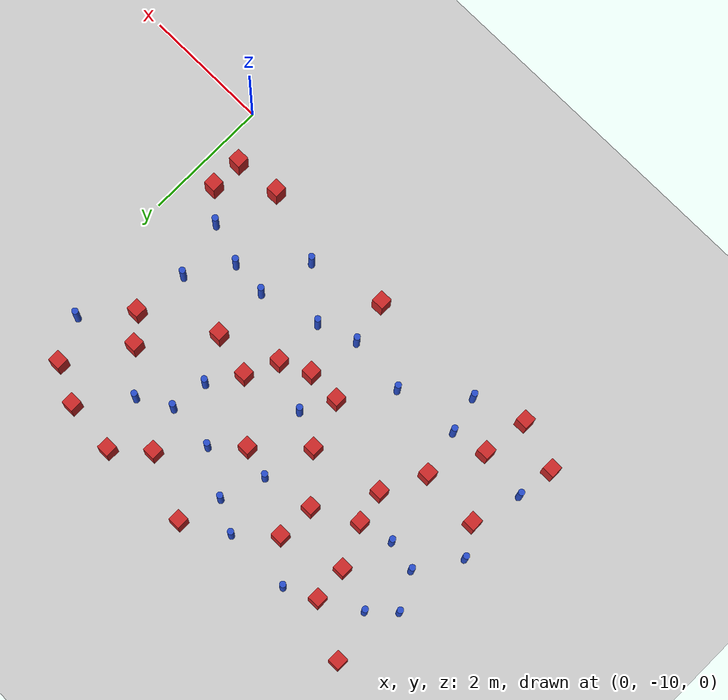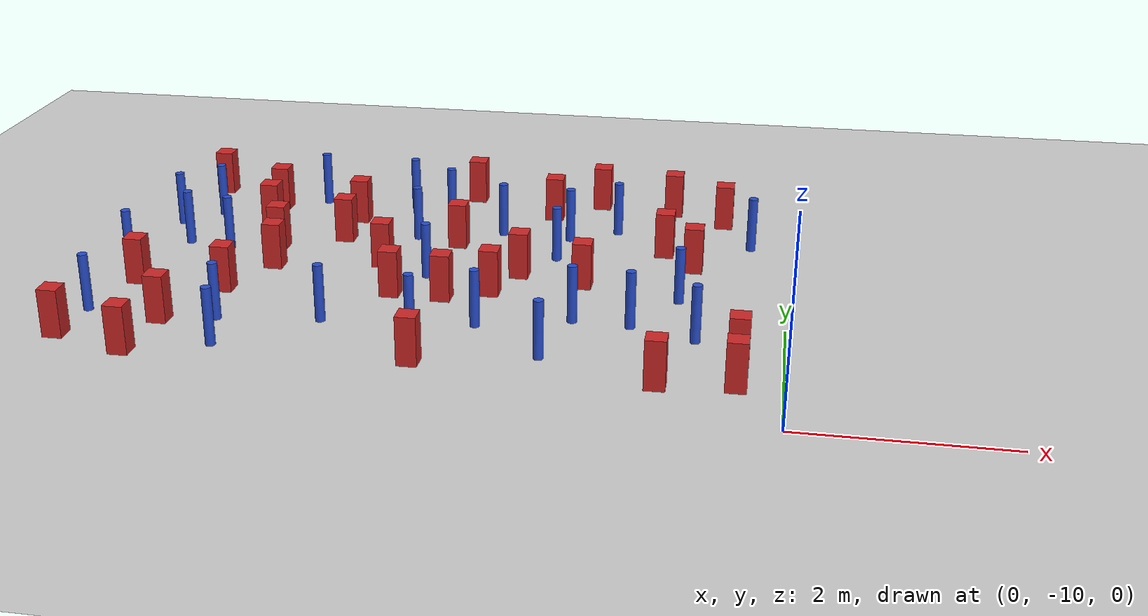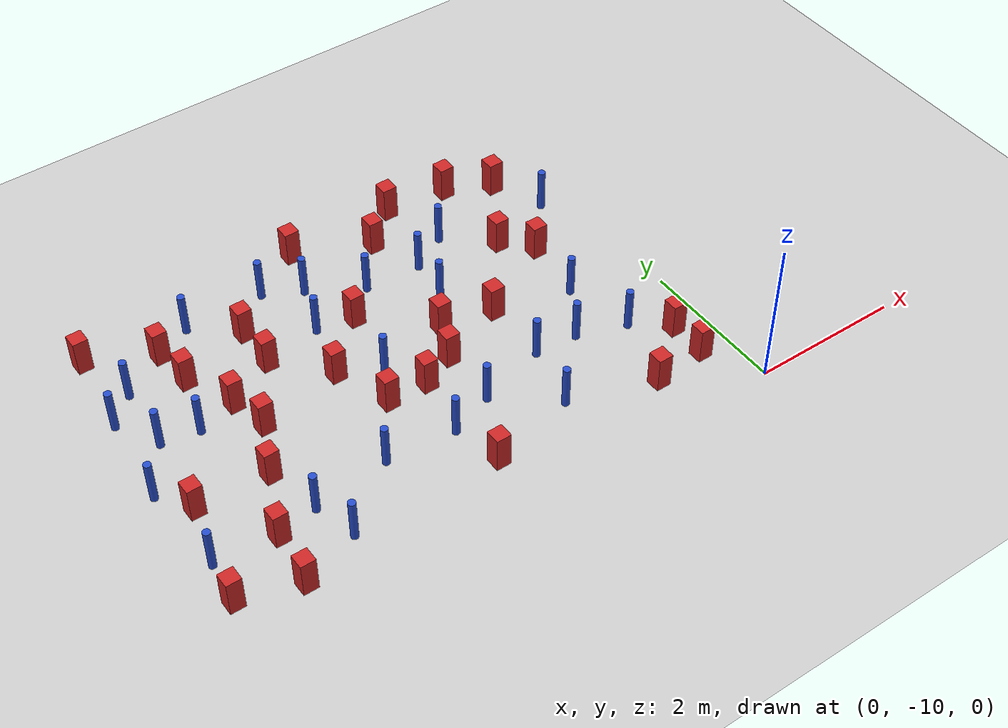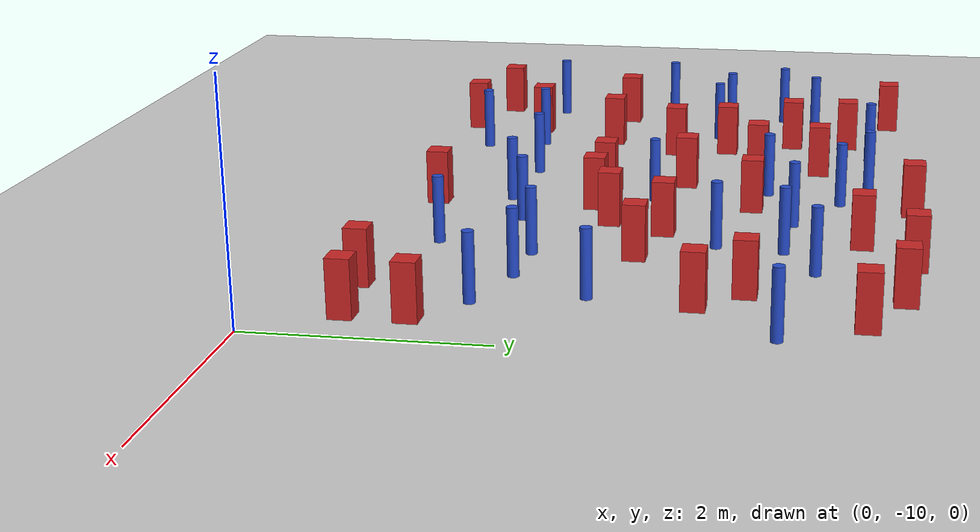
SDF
<sdf version="1.6">
 <world name="default">
  <model name="ground_plane">
   <static>1</static>
   <link name="link">
    <collision name="collision">
     <geometry><plane><normal>0 0 1</normal><size>100 100</size></plane></geometry>
     <surface><friction><ode><mu>100</mu><mu2>50</mu2></ode></friction></surface>
    </collision>
    <visual name="visual">
     <cast_shadows>0</cast_shadows>
     <geometry><plane><normal>0 0 1</normal><size>100 100</size></plane></geometry>
     <material>
      <ambient>1.0 1.0 1.0 1.0</ambient>
      <diffuse>0.8 0.8 0.8 1.0</diffuse>
      <specular>0.01 0.01 0.01 1.000000</specular>
     </material>
    </visual>
   </link>
  </model>
  <model name="square_post_obstacle13">
   <static>true</static>
   <pose>-1.15080311443 -9.35945894737 -6.11067671241e-07 -5.50515727128e-06 -8.79689657224e-07 2.37013304536e-05</pose>
   <link name="link">
    <pose>0 0 0.25 0 -0 0</pose>
    <inertial>
     <mass>100</mass>
     <inertia>
      <ixx>0.166667</ixx>
      <ixy>0</ixy>
      <ixz>0</ixz>
      <iyy>0.166667</iyy>
      <iyz>0</iyz>
      <izz>0.166667</izz>
     </inertia>
    </inertial>
    <collision name="collision"><geometry><box><size>.2 .2 .5</size></box></geometry></collision>
    <visual name="visual">
     <geometry><box><size>.2 .2 .5</size></box></geometry>
     <material>
      <script><name>Gazebo/Red</name><uri>file://media/materials/scripts/gazebo.material</uri></script>
     </material>
    </visual>
   </link>
  </model>
  <model name="square_post_obstacle15">
   <static>true</static>
   <pose>-4.85752129993 -6.35627862861 -6.11067671241e-07 -5.50515727128e-06 -8.79689657224e-07 2.37013304536e-05</pose>
   <link name="link">
    <pose>0 0 0.25 0 -0 0</pose>
    <inertial>
     <mass>100</mass>
     <inertia>
      <ixx>0.166667</ixx>
      <ixy>0</ixy>
      <ixz>0</ixz>
      <iyy>0.166667</iyy>
      <iyz>0</iyz>
      <izz>0.166667</izz>
     </inertia>
    </inertial>
    <collision name="collision"><geometry><box><size>.2 .2 .5</size></box></geometry></collision>
    <visual name="visual">
     <geometry><box><size>.2 .2 .5</size></box></geometry>
     <material>
      <script><name>Gazebo/Red</name><uri>file://media/materials/scripts/gazebo.material</uri></script>
     </material>
    </visual>
   </link>
  </model>
  <model name="pole_obstacle12">
   <static>true</static>
   <pose>-6.84113890577 -6.18718154438 -9.47619616065e-06 5.49618799737e-07 2.36310414037e-07 -1.55090534814e-07</pose>
   <link name="link">
    <pose>0 0 0.3 0 -0 0</pose>
    <inertial>
     <mass>1</mass>
     <inertia><ixx>0.145833</ixx><ixy>0</ixy><ixz>0</ixz><iyy>0.145833</iyy><iyz>0</iyz><izz>0.125</izz></inertia>
    </inertial>
    <collision name="collision">
     <geometry><cylinder><radius>0.05</radius><length>.6</length></cylinder></geometry>
    </collision>
    <visual name="visual">
     <geometry><cylinder><radius>0.05</radius><length>.6</length></cylinder></geometry>
     <material>
      <script><name>Gazebo/Blue</name><uri>file://media/materials/scripts/gazebo.material</uri></script>
     </material>
    </visual>
   </link>
  </model>
  <model name="pole_obstacle13">
   <static>true</static>
   <pose>-6.47406908762 -5.83882326875 -9.47619616065e-06 5.49618799737e-07 2.36310414037e-07 -1.55090534814e-07</pose>
   <link name="link">
    <pose>0 0 0.3 0 -0 0</pose>
    <inertial>
     <mass>1</mass>
     <inertia><ixx>0.145833</ixx><ixy>0</ixy><ixz>0</ixz><iyy>0.145833</iyy><iyz>0</iyz><izz>0.125</izz></inertia>
    </inertial>
    <collision name="collision">
     <geometry><cylinder><radius>0.05</radius><length>.6</length></cylinder></geometry>
    </collision>
    <visual name="visual">
     <geometry><cylinder><radius>0.05</radius><length>.6</length></cylinder></geometry>
     <material>
      <script><name>Gazebo/Blue</name><uri>file://media/materials/scripts/gazebo.material</uri></script>
     </material>
    </visual>
   </link>
  </model>
  <model name="square_post_obstacle26">
   <static>true</static>
   <pose>-2.65198207244 -5.31864021981 -6.11067671241e-07 -5.50515727128e-06 -8.79689657224e-07 2.37013304536e-05</pose>
   <link name="link">
    <pose>0 0 0.25 0 -0 0</pose>
    <inertial>
     <mass>100</mass>
     <inertia>
      <ixx>0.166667</ixx>
      <ixy>0</ixy>
      <ixz>0</ixz>
      <iyy>0.166667</iyy>
      <iyz>0</iyz>
      <izz>0.166667</izz>
     </inertia>
    </inertial>
    <collision name="collision"><geometry><box><size>.2 .2 .5</size></box></geometry></collision>
    <visual name="visual">
     <geometry><box><size>.2 .2 .5</size></box></geometry>
     <material>
      <script><name>Gazebo/Red</name><uri>file://media/materials/scripts/gazebo.material</uri></script>
     </material>
    </visual>
   </link>
  </model>
  <model name="square_post_obstacle28">
   <static>true</static>
   <pose>-2.7761158407 -7.06162654108 -6.11067671241e-07 -5.50515727128e-06 -8.79689657224e-07 2.37013304536e-05</pose>
   <link name="link">
    <pose>0 0 0.25 0 -0 0</pose>
    <inertial>
     <mass>100</mass>
     <inertia>
      <ixx>0.166667</ixx>
      <ixy>0</ixy>
      <ixz>0</ixz>
      <iyy>0.166667</iyy>
      <iyz>0</iyz>
      <izz>0.166667</izz>
     </inertia>
    </inertial>
    <collision name="collision"><geometry><box><size>.2 .2 .5</size></box></geometry></collision>
    <visual name="visual">
     <geometry><box><size>.2 .2 .5</size></box></geometry>
     <material>
      <script><name>Gazebo/Red</name><uri>file://media/materials/scripts/gazebo.material</uri></script>
     </material>
    </visual>
   </link>
  </model>
  <model name="square_post_obstacle30">
   <static>true</static>
   <pose>-6.70299191993 -5.05854569441 -6.11067671241e-07 -5.50515727128e-06 -8.79689657224e-07 2.37013304536e-05</pose>
   <link name="link">
    <pose>0 0 0.25 0 -0 0</pose>
    <inertial>
     <mass>100</mass>
     <inertia>
      <ixx>0.166667</ixx>
      <ixy>0</ixy>
      <ixz>0</ixz>
      <iyy>0.166667</iyy>
      <iyz>0</iyz>
      <izz>0.166667</izz>
     </inertia>
    </inertial>
    <collision name="collision"><geometry><box><size>.2 .2 .5</size></box></geometry></collision>
    <visual name="visual">
     <geometry><box><size>.2 .2 .5</size></box></geometry>
     <material>
      <script><name>Gazebo/Red</name><uri>file://media/materials/scripts/gazebo.material</uri></script>
     </material>
    </visual>
   </link>
  </model>
  <model name="pole_obstacle20">
   <static>true</static>
   <pose>-1.07107192805 -7.48233160048 -9.47619616065e-06 5.49618799737e-07 2.36310414061e-07 -1.550905348e-07</pose>
   <link name="link">
    <pose>0 0 0.3 0 -0 0</pose>
    <inertial>
     <mass>1</mass>
     <inertia><ixx>0.145833</ixx><ixy>0</ixy><ixz>0</ixz><iyy>0.145833</iyy><iyz>0</iyz><izz>0.125</izz></inertia>
    </inertial>
    <collision name="collision">
     <geometry><cylinder><radius>0.05</radius><length>.6</length></cylinder></geometry>
    </collision>
    <visual name="visual">
     <geometry><cylinder><radius>0.05</radius><length>.6</length></cylinder></geometry>
     <material>
      <script><name>Gazebo/Blue</name><uri>file://media/materials/scripts/gazebo.material</uri></script>
     </material>
    </visual>
   </link>
  </model>
  <model name="square_post_obstacle39">
   <static>true</static>
   <pose>-1.31602719654 -6.23892827977 -6.11067671241e-07 -5.50515727128e-06 -8.79689657224e-07 2.37013304536e-05</pose>
   <link name="link">
    <pose>0 0 0.25 0 -0 0</pose>
    <inertial>
     <mass>100</mass>
     <inertia>
      <ixx>0.166667</ixx>
      <ixy>0</ixy>
      <ixz>0</ixz>
      <iyy>0.166667</iyy>
      <iyz>0</iyz>
      <izz>0.166667</izz>
     </inertia>
    </inertial>
    <collision name="collision"><geometry><box><size>.2 .2 .5</size></box></geometry></collision>
    <visual name="visual">
     <geometry><box><size>.2 .2 .5</size></box></geometry>
     <material>
      <script><name>Gazebo/Red</name><uri>file://media/materials/scripts/gazebo.material</uri></script>
     </material>
    </visual>
   </link>
  </model>
  <model name="square_post_obstacle40">
   <static>true</static>
   <pose>-0.981823867584 -6.62053631097 -6.11067671241e-07 -5.50515727128e-06 -8.79689657224e-07 2.37013304536e-05</pose>
   <link name="link">
    <pose>0 0 0.25 0 -0 0</pose>
    <inertial>
     <mass>100</mass>
     <inertia>
      <ixx>0.166667</ixx>
      <ixy>0</ixy>
      <ixz>0</ixz>
      <iyy>0.166667</iyy>
      <iyz>0</iyz>
      <izz>0.166667</izz>
     </inertia>
    </inertial>
    <collision name="collision"><geometry><box><size>.2 .2 .5</size></box></geometry></collision>
    <visual name="visual">
     <geometry><box><size>.2 .2 .5</size></box></geometry>
     <material>
      <script><name>Gazebo/Red</name><uri>file://media/materials/scripts/gazebo.material</uri></script>
     </material>
    </visual>
   </link>
  </model>
  <model name="square_post_obstacle46">
   <static>true</static>
   <pose>-2.08933528591 -7.22850360897 -6.11067671241e-07 -5.50515727128e-06 -8.79689657224e-07 2.37013304536e-05</pose>
   <link name="link">
    <pose>0 0 0.25 0 -0 0</pose>
    <inertial>
     <mass>100</mass>
     <inertia>
      <ixx>0.166667</ixx>
      <ixy>0</ixy>
      <ixz>0</ixz>
      <iyy>0.166667</iyy>
      <iyz>0</iyz>
      <izz>0.166667</izz>
     </inertia>
    </inertial>
    <collision name="collision"><geometry><box><size>.2 .2 .5</size></box></geometry></collision>
    <visual name="visual">
     <geometry><box><size>.2 .2 .5</size></box></geometry>
     <material>
      <script><name>Gazebo/Red</name><uri>file://media/materials/scripts/gazebo.material</uri></script>
     </material>
    </visual>
   </link>
  </model>
  <model name="square_post_obstacle48">
   <static>true</static>
   <pose>-4.2741128668 -7.00380324976 -6.11067671241e-07 -5.50515727128e-06 -8.79689657224e-07 2.37013304536e-05</pose>
   <link name="link">
    <pose>0 0 0.25 0 -0 0</pose>
    <inertial>
     <mass>100</mass>
     <inertia>
      <ixx>0.166667</ixx>
      <ixy>0</ixy>
      <ixz>0</ixz>
      <iyy>0.166667</iyy>
      <iyz>0</iyz>
      <izz>0.166667</izz>
     </inertia>
    </inertial>
    <collision name="collision"><geometry><box><size>.2 .2 .5</size></box></geometry></collision>
    <visual name="visual">
     <geometry><box><size>.2 .2 .5</size></box></geometry>
     <material>
      <script><name>Gazebo/Red</name><uri>file://media/materials/scripts/gazebo.material</uri></script>
     </material>
    </visual>
   </link>
  </model>
  <model name="square_post_obstacle50">
   <static>true</static>
   <pose>-6.6819377947 -7.85800554298 -6.11067671241e-07 -5.50515727128e-06 -8.79689657224e-07 2.37013304536e-05</pose>
   <link name="link">
    <pose>0 0 0.25 0 -0 0</pose>
    <inertial>
     <mass>100</mass>
     <inertia>
      <ixx>0.166667</ixx>
      <ixy>0</ixy>
      <ixz>0</ixz>
      <iyy>0.166667</iyy>
      <iyz>0</iyz>
      <izz>0.166667</izz>
     </inertia>
    </inertial>
    <collision name="collision"><geometry><box><size>.2 .2 .5</size></box></geometry></collision>
    <visual name="visual">
     <geometry><box><size>.2 .2 .5</size></box></geometry>
     <material>
      <script><name>Gazebo/Red</name><uri>file://media/materials/scripts/gazebo.material</uri></script>
     </material>
    </visual>
   </link>
  </model>
  <model name="pole_obstacle57">
   <static>true</static>
   <pose>-0.851152132205 -8.38104891946 -9.47619616065e-06 5.49618799737e-07 2.36310414038e-07 -1.55090534813e-07</pose>
   <link name="link">
    <pose>0 0 0.3 0 -0 0</pose>
    <inertial>
     <mass>1</mass>
     <inertia><ixx>0.145833</ixx><ixy>0</ixy><ixz>0</ixz><iyy>0.145833</iyy><iyz>0</iyz><izz>0.125</izz></inertia>
    </inertial>
    <collision name="collision">
     <geometry><cylinder><radius>0.05</radius><length>.6</length></cylinder></geometry>
    </collision>
    <visual name="visual">
     <geometry><cylinder><radius>0.05</radius><length>.6</length></cylinder></geometry>
     <material>
      <script><name>Gazebo/Blue</name><uri>file://media/materials/scripts/gazebo.material</uri></script>
     </material>
    </visual>
   </link>
  </model>
  <model name="pole_obstacle60">
   <static>true</static>
   <pose>-2.9989048025 -8.37316867764 -9.4761961606e-06 5.49618799729e-07 2.36310414e-07 -1.55090534824e-07</pose>
   <link name="link">
    <pose>0 0 0.3 0 -0 0</pose>
    <inertial>
     <mass>1</mass>
     <inertia><ixx>0.145833</ixx><ixy>0</ixy><ixz>0</ixz><iyy>0.145833</iyy><iyz>0</iyz><izz>0.125</izz></inertia>
    </inertial>
    <collision name="collision">
     <geometry><cylinder><radius>0.05</radius><length>.6</length></cylinder></geometry>
    </collision>
    <visual name="visual">
     <geometry><cylinder><radius>0.05</radius><length>.6</length></cylinder></geometry>
     <material>
      <script><name>Gazebo/Blue</name><uri>file://media/materials/scripts/gazebo.material</uri></script>
     </material>
    </visual>
   </link>
  </model>
  <model name="pole_obstacle64">
   <static>true</static>
   <pose>-1.88089551525 -5.69829504972 -9.47619616065e-06 5.49618799737e-07 2.36310414061e-07 -1.550905348e-07</pose>
   <link name="link">
    <pose>0 0 0.3 0 -0 0</pose>
    <inertial>
     <mass>1</mass>
     <inertia><ixx>0.145833</ixx><ixy>0</ixy><ixz>0</ixz><iyy>0.145833</iyy><iyz>0</iyz><izz>0.125</izz></inertia>
    </inertial>
    <collision name="collision">
     <geometry><cylinder><radius>0.05</radius><length>.6</length></cylinder></geometry>
    </collision>
    <visual name="visual">
     <geometry><cylinder><radius>0.05</radius><length>.6</length></cylinder></geometry>
     <material>
      <script><name>Gazebo/Blue</name><uri>file://media/materials/scripts/gazebo.material</uri></script>
     </material>
    </visual>
   </link>
  </model>
  <model name="pole_obstacle77">
   <static>true</static>
   <pose>-5.55270071879 -8.6290468196 -9.47619616065e-06 5.49618799737e-07 2.36310414065e-07 -1.55090534796e-07</pose>
   <link name="link">
    <pose>0 0 0.3 0 -0 0</pose>
    <inertial>
     <mass>1</mass>
     <inertia><ixx>0.145833</ixx><ixy>0</ixy><ixz>0</ixz><iyy>0.145833</iyy><iyz>0</iyz><izz>0.125</izz></inertia>
    </inertial>
    <collision name="collision">
     <geometry><cylinder><radius>0.05</radius><length>.6</length></cylinder></geometry>
    </collision>
    <visual name="visual">
     <geometry><cylinder><radius>0.05</radius><length>.6</length></cylinder></geometry>
     <material>
      <script><name>Gazebo/Blue</name><uri>file://media/materials/scripts/gazebo.material</uri></script>
     </material>
    </visual>
   </link>
  </model>
  <model name="pole_obstacle87">
   <static>true</static>
   <pose>-6.89351539814 -8.63668752227 -9.47619616065e-06 5.49618799737e-07 2.36310414065e-07 -1.55090534796e-07</pose>
   <link name="link">
    <pose>0 0 0.3 0 -0 0</pose>
    <inertial>
     <mass>1</mass>
     <inertia><ixx>0.145833</ixx><ixy>0</ixy><ixz>0</ixz><iyy>0.145833</iyy><iyz>0</iyz><izz>0.125</izz></inertia>
    </inertial>
    <collision name="collision">
     <geometry><cylinder><radius>0.05</radius><length>.6</length></cylinder></geometry>
    </collision>
    <visual name="visual">
     <geometry><cylinder><radius>0.05</radius><length>.6</length></cylinder></geometry>
     <material>
      <script><name>Gazebo/Blue</name><uri>file://media/materials/scripts/gazebo.material</uri></script>
     </material>
    </visual>
   </link>
  </model>
  <model name="square_post_obstacle81">
   <static>true</static>
   <pose>-2.14886420166 -4.87381800318 -6.11067671241e-07 -5.50515727128e-06 -8.79689657224e-07 2.37013304536e-05</pose>
   <link name="link">
    <pose>0 0 0.25 0 -0 0</pose>
    <inertial>
     <mass>100</mass>
     <inertia>
      <ixx>0.166667</ixx>
      <ixy>0</ixy>
      <ixz>0</ixz>
      <iyy>0.166667</iyy>
      <iyz>0</iyz>
      <izz>0.166667</izz>
     </inertia>
    </inertial>
    <collision name="collision"><geometry><box><size>.2 .2 .5</size></box></geometry></collision>
    <visual name="visual">
     <geometry><box><size>.2 .2 .5</size></box></geometry>
     <material>
      <script><name>Gazebo/Red</name><uri>file://media/materials/scripts/gazebo.material</uri></script>
     </material>
    </visual>
   </link>
  </model>
  <model name="pole_obstacle101">
   <static>true</static>
   <pose>-3.1489185395 -5.93360889601 -9.47619616065e-06 5.49618799738e-07 2.3631041406e-07 -1.55090534801e-07</pose>
   <link name="link">
    <pose>0 0 0.3 0 -0 0</pose>
    <inertial>
     <mass>1</mass>
     <inertia><ixx>0.145833</ixx><ixy>0</ixy><ixz>0</ixz><iyy>0.145833</iyy><iyz>0</iyz><izz>0.125</izz></inertia>
    </inertial>
    <collision name="collision">
     <geometry><cylinder><radius>0.05</radius><length>.6</length></cylinder></geometry>
    </collision>
    <visual name="visual">
     <geometry><cylinder><radius>0.05</radius><length>.6</length></cylinder></geometry>
     <material>
      <script><name>Gazebo/Blue</name><uri>file://media/materials/scripts/gazebo.material</uri></script>
     </material>
    </visual>
   </link>
  </model>
  <model name="square_post_obstacle91">
   <static>true</static>
   <pose>-3.46021586241 -7.77570804038 -6.11067671241e-07 -5.50515727128e-06 -8.79689657224e-07 2.37013304536e-05</pose>
   <link name="link">
    <pose>0 0 0.25 0 -0 0</pose>
    <inertial>
     <mass>100</mass>
     <inertia>
      <ixx>0.166667</ixx>
      <ixy>0</ixy>
      <ixz>0</ixz>
      <iyy>0.166667</iyy>
      <iyz>0</iyz>
      <izz>0.166667</izz>
     </inertia>
    </inertial>
    <collision name="collision"><geometry><box><size>.2 .2 .5</size></box></geometry></collision>
    <visual name="visual">
     <geometry><box><size>.2 .2 .5</size></box></geometry>
     <material>
      <script><name>Gazebo/Red</name><uri>file://media/materials/scripts/gazebo.material</uri></script>
     </material>
    </visual>
   </link>
  </model>
  <model name="pole_obstacle104">
   <static>true</static>
   <pose>-5.38508778741 -5.25699290293 -9.47619616065e-06 5.49618799737e-07 2.36310414037e-07 -1.55090534814e-07</pose>
   <link name="link">
    <pose>0 0 0.3 0 -0 0</pose>
    <inertial>
     <mass>1</mass>
     <inertia><ixx>0.145833</ixx><ixy>0</ixy><ixz>0</ixz><iyy>0.145833</iyy><iyz>0</iyz><izz>0.125</izz></inertia>
    </inertial>
    <collision name="collision">
     <geometry><cylinder><radius>0.05</radius><length>.6</length></cylinder></geometry>
    </collision>
    <visual name="visual">
     <geometry><cylinder><radius>0.05</radius><length>.6</length></cylinder></geometry>
     <material>
      <script><name>Gazebo/Blue</name><uri>file://media/materials/scripts/gazebo.material</uri></script>
     </material>
    </visual>
   </link>
  </model>
  <model name="pole_obstacle107">
   <static>true</static>
   <pose>-4.52431826535 -8.50380446015 -9.47619616065e-06 5.49618799737e-07 2.36310414065e-07 -1.55090534796e-07</pose>
   <link name="link">
    <pose>0 0 0.3 0 -0 0</pose>
    <inertial>
     <mass>1</mass>
     <inertia><ixx>0.145833</ixx><ixy>0</ixy><ixz>0</ixz><iyy>0.145833</iyy><iyz>0</iyz><izz>0.125</izz></inertia>
    </inertial>
    <collision name="collision">
     <geometry><cylinder><radius>0.05</radius><length>.6</length></cylinder></geometry>
    </collision>
    <visual name="visual">
     <geometry><cylinder><radius>0.05</radius><length>.6</length></cylinder></geometry>
     <material>
      <script><name>Gazebo/Blue</name><uri>file://media/materials/scripts/gazebo.material</uri></script>
     </material>
    </visual>
   </link>
  </model>
  <model name="pole_obstacle110">
   <static>true</static>
   <pose>-6.04521259359 -6.83737604835 -9.47619616065e-06 5.49618799737e-07 2.36310414037e-07 -1.55090534814e-07</pose>
   <link name="link">
    <pose>0 0 0.3 0 -0 0</pose>
    <inertial>
     <mass>1</mass>
     <inertia><ixx>0.145833</ixx><ixy>0</ixy><ixz>0</ixz><iyy>0.145833</iyy><iyz>0</iyz><izz>0.125</izz></inertia>
    </inertial>
    <collision name="collision">
     <geometry><cylinder><radius>0.05</radius><length>.6</length></cylinder></geometry>
    </collision>
    <visual name="visual">
     <geometry><cylinder><radius>0.05</radius><length>.6</length></cylinder></geometry>
     <material>
      <script><name>Gazebo/Blue</name><uri>file://media/materials/scripts/gazebo.material</uri></script>
     </material>
    </visual>
   </link>
  </model>
  <model name="square_post_obstacle99">
   <static>true</static>
   <pose>-3.45064929369 -9.25406133206 -6.11067671241e-07 -5.50515727128e-06 -8.79689657224e-07 2.37013304536e-05</pose>
   <link name="link">
    <pose>0 0 0.25 0 -0 0</pose>
    <inertial>
     <mass>100</mass>
     <inertia>
      <ixx>0.166667</ixx>
      <ixy>0</ixy>
      <ixz>0</ixz>
      <iyy>0.166667</iyy>
      <iyz>0</iyz>
      <izz>0.166667</izz>
     </inertia>
    </inertial>
    <collision name="collision"><geometry><box><size>.2 .2 .5</size></box></geometry></collision>
    <visual name="visual">
     <geometry><box><size>.2 .2 .5</size></box></geometry>
     <material>
      <script><name>Gazebo/Red</name><uri>file://media/materials/scripts/gazebo.material</uri></script>
     </material>
    </visual>
   </link>
  </model>
  <model name="pole_obstacle117">
   <static>true</static>
   <pose>-0.393690409702 -5.9405550063 -9.47619616065e-06 5.49618799737e-07 2.36310414065e-07 -1.55090534796e-07</pose>
   <link name="link">
    <pose>0 0 0.3 0 -0 0</pose>
    <inertial>
     <mass>1</mass>
     <inertia><ixx>0.145833</ixx><ixy>0</ixy><ixz>0</ixz><iyy>0.145833</iyy><iyz>0</iyz><izz>0.125</izz></inertia>
    </inertial>
    <collision name="collision">
     <geometry><cylinder><radius>0.05</radius><length>.6</length></cylinder></geometry>
    </collision>
    <visual name="visual">
     <geometry><cylinder><radius>0.05</radius><length>.6</length></cylinder></geometry>
     <material>
      <script><name>Gazebo/Blue</name><uri>file://media/materials/scripts/gazebo.material</uri></script>
     </material>
    </visual>
   </link>
  </model>
  <model name="pole_obstacle121">
   <static>true</static>
   <pose>-3.59833182606 -8.58758748815 -9.4761961606e-06 5.49618799729e-07 2.36310414e-07 -1.55090534824e-07</pose>
   <link name="link">
    <pose>0 0 0.3 0 -0 0</pose>
    <inertial>
     <mass>1</mass>
     <inertia><ixx>0.145833</ixx><ixy>0</ixy><ixz>0</ixz><iyy>0.145833</iyy><iyz>0</iyz><izz>0.125</izz></inertia>
    </inertial>
    <collision name="collision">
     <geometry><cylinder><radius>0.05</radius><length>.6</length></cylinder></geometry>
    </collision>
    <visual name="visual">
     <geometry><cylinder><radius>0.05</radius><length>.6</length></cylinder></geometry>
     <material>
      <script><name>Gazebo/Blue</name><uri>file://media/materials/scripts/gazebo.material</uri></script>
     </material>
    </visual>
   </link>
  </model>
  <model name="pole_obstacle126">
   <static>true</static>
   <pose>-4.0657494114 -6.20527237109 -9.47619616065e-06 5.49618799737e-07 2.36310414037e-07 -1.55090534814e-07</pose>
   <link name="link">
    <pose>0 0 0.3 0 -0 0</pose>
    <inertial>
     <mass>1</mass>
     <inertia><ixx>0.145833</ixx><ixy>0</ixy><ixz>0</ixz><iyy>0.145833</iyy><iyz>0</iyz><izz>0.125</izz></inertia>
    </inertial>
    <collision name="collision">
     <geometry><cylinder><radius>0.05</radius><length>.6</length></cylinder></geometry>
    </collision>
    <visual name="visual">
     <geometry><cylinder><radius>0.05</radius><length>.6</length></cylinder></geometry>
     <material>
      <script><name>Gazebo/Blue</name><uri>file://media/materials/scripts/gazebo.material</uri></script>
     </material>
    </visual>
   </link>
  </model>
  <model name="square_post_obstacle116">
   <static>true</static>
   <pose>-0.430027848705 -9.28413399064 -6.11067671241e-07 -5.50515727128e-06 -8.79689657224e-07 2.37013304536e-05</pose>
   <link name="link">
    <pose>0 0 0.25 0 -0 0</pose>
    <inertial>
     <mass>100</mass>
     <inertia>
      <ixx>0.166667</ixx>
      <ixy>0</ixy>
      <ixz>0</ixz>
      <iyy>0.166667</iyy>
      <iyz>0</iyz>
      <izz>0.166667</izz>
     </inertia>
    </inertial>
    <collision name="collision"><geometry><box><size>.2 .2 .5</size></box></geometry></collision>
    <visual name="visual">
     <geometry><box><size>.2 .2 .5</size></box></geometry>
     <material>
      <script><name>Gazebo/Red</name><uri>file://media/materials/scripts/gazebo.material</uri></script>
     </material>
    </visual>
   </link>
  </model>
  <model name="pole_obstacle138">
   <static>true</static>
   <pose>-2.27400087864 -8.97324857184 -9.4761961606e-06 5.49618799729e-07 2.36310414e-07 -1.55090534824e-07</pose>
   <link name="link">
    <pose>0 0 0.3 0 -0 0</pose>
    <inertial>
     <mass>1</mass>
     <inertia><ixx>0.145833</ixx><ixy>0</ixy><ixz>0</ixz><iyy>0.145833</iyy><iyz>0</iyz><izz>0.125</izz></inertia>
    </inertial>
    <collision name="collision">
     <geometry><cylinder><radius>0.05</radius><length>.6</length></cylinder></geometry>
    </collision>
    <visual name="visual">
     <geometry><cylinder><radius>0.05</radius><length>.6</length></cylinder></geometry>
     <material>
      <script><name>Gazebo/Blue</name><uri>file://media/materials/scripts/gazebo.material</uri></script>
     </material>
    </visual>
   </link>
  </model>
  <model name="square_post_obstacle124">
   <static>true</static>
   <pose>-2.99937856107 -7.57124902652 -6.11067671241e-07 -5.50515727128e-06 -8.79689657224e-07 2.37013304536e-05</pose>
   <link name="link">
    <pose>0 0 0.25 0 -0 0</pose>
    <inertial>
     <mass>100</mass>
     <inertia>
      <ixx>0.166667</ixx>
      <ixy>0</ixy>
      <ixz>0</ixz>
      <iyy>0.166667</iyy>
      <iyz>0</iyz>
      <izz>0.166667</izz>
     </inertia>
    </inertial>
    <collision name="collision"><geometry><box><size>.2 .2 .5</size></box></geometry></collision>
    <visual name="visual">
     <geometry><box><size>.2 .2 .5</size></box></geometry>
     <material>
      <script><name>Gazebo/Red</name><uri>file://media/materials/scripts/gazebo.material</uri></script>
     </material>
    </visual>
   </link>
  </model>
  <model name="pole_obstacle141">
   <static>true</static>
   <pose>-1.49816792146 -8.15871243749 -9.47619616065e-06 5.49618799737e-07 2.36310414046e-07 -1.55090534809e-07</pose>
   <link name="link">
    <pose>0 0 0.3 0 -0 0</pose>
    <inertial>
     <mass>1</mass>
     <inertia><ixx>0.145833</ixx><ixy>0</ixy><ixz>0</ixz><iyy>0.145833</iyy><iyz>0</iyz><izz>0.125</izz></inertia>
    </inertial>
    <collision name="collision">
     <geometry><cylinder><radius>0.05</radius><length>.6</length></cylinder></geometry>
    </collision>
    <visual name="visual">
     <geometry><cylinder><radius>0.05</radius><length>.6</length></cylinder></geometry>
     <material>
      <script><name>Gazebo/Blue</name><uri>file://media/materials/scripts/gazebo.material</uri></script>
     </material>
    </visual>
   </link>
  </model>
  <model name="pole_obstacle143">
   <static>true</static>
   <pose>-3.82843012792 -5.52526777844 -9.47619616065e-06 5.49618799738e-07 2.3631041406e-07 -1.55090534801e-07</pose>
   <link name="link">
    <pose>0 0 0.3 0 -0 0</pose>
    <inertial>
     <mass>1</mass>
     <inertia><ixx>0.145833</ixx><ixy>0</ixy><ixz>0</ixz><iyy>0.145833</iyy><iyz>0</iyz><izz>0.125</izz></inertia>
    </inertial>
    <collision name="collision">
     <geometry><cylinder><radius>0.05</radius><length>.6</length></cylinder></geometry>
    </collision>
    <visual name="visual">
     <geometry><cylinder><radius>0.05</radius><length>.6</length></cylinder></geometry>
     <material>
      <script><name>Gazebo/Blue</name><uri>file://media/materials/scripts/gazebo.material</uri></script>
     </material>
    </visual>
   </link>
  </model>
  <model name="square_post_obstacle142">
   <static>true</static>
   <pose>-5.81395099974 -6.05018908685 -6.11067671241e-07 -5.50515727128e-06 -8.79689657224e-07 2.37013304536e-05</pose>
   <link name="link">
    <pose>0 0 0.25 0 -0 0</pose>
    <inertial>
     <mass>100</mass>
     <inertia>
      <ixx>0.166667</ixx>
      <ixy>0</ixy>
      <ixz>0</ixz>
      <iyy>0.166667</iyy>
      <iyz>0</iyz>
      <izz>0.166667</izz>
     </inertia>
    </inertial>
    <collision name="collision"><geometry><box><size>.2 .2 .5</size></box></geometry></collision>
    <visual name="visual">
     <geometry><box><size>.2 .2 .5</size></box></geometry>
     <material>
      <script><name>Gazebo/Red</name><uri>file://media/materials/scripts/gazebo.material</uri></script>
     </material>
    </visual>
   </link>
  </model>
  <model name="pole_obstacle155">
   <static>true</static>
   <pose>-6.53623121484 -6.74235908112 -9.47619616065e-06 5.49618799737e-07 2.36310414037e-07 -1.55090534814e-07</pose>
   <link name="link">
    <pose>0 0 0.3 0 -0 0</pose>
    <inertial>
     <mass>1</mass>
     <inertia><ixx>0.145833</ixx><ixy>0</ixy><ixz>0</ixz><iyy>0.145833</iyy><iyz>0</iyz><izz>0.125</izz></inertia>
    </inertial>
    <collision name="collision">
     <geometry><cylinder><radius>0.05</radius><length>.6</length></cylinder></geometry>
    </collision>
    <visual name="visual">
     <geometry><cylinder><radius>0.05</radius><length>.6</length></cylinder></geometry>
     <material>
      <script><name>Gazebo/Blue</name><uri>file://media/materials/scripts/gazebo.material</uri></script>
     </material>
    </visual>
   </link>
  </model>
  <model name="square_post_obstacle146">
   <static>true</static>
   <pose>-5.52199923929 -6.70781771003 -6.11067671241e-07 -5.50515727128e-06 -8.79689657224e-07 2.37013304536e-05</pose>
   <link name="link">
    <pose>0 0 0.25 0 -0 0</pose>
    <inertial>
     <mass>100</mass>
     <inertia>
      <ixx>0.166667</ixx>
      <ixy>0</ixy>
      <ixz>0</ixz>
      <iyy>0.166667</iyy>
      <iyz>0</iyz>
      <izz>0.166667</izz>
     </inertia>
    </inertial>
    <collision name="collision"><geometry><box><size>.2 .2 .5</size></box></geometry></collision>
    <visual name="visual">
     <geometry><box><size>.2 .2 .5</size></box></geometry>
     <material>
      <script><name>Gazebo/Red</name><uri>file://media/materials/scripts/gazebo.material</uri></script>
     </material>
    </visual>
   </link>
  </model>
  <model name="square_post_obstacle163">
   <static>true</static>
   <pose>-6.09828878463 -8.74197162197 -6.11067671241e-07 -5.50515727128e-06 -8.79689657224e-07 2.37013304536e-05</pose>
   <link name="link">
    <pose>0 0 0.25 0 -0 0</pose>
    <inertial>
     <mass>100</mass>
     <inertia>
      <ixx>0.166667</ixx>
      <ixy>0</ixy>
      <ixz>0</ixz>
      <iyy>0.166667</iyy>
      <iyz>0</iyz>
      <izz>0.166667</izz>
     </inertia>
    </inertial>
    <collision name="collision"><geometry><box><size>.2 .2 .5</size></box></geometry></collision>
    <visual name="visual">
     <geometry><box><size>.2 .2 .5</size></box></geometry>
     <material>
      <script><name>Gazebo/Red</name><uri>file://media/materials/scripts/gazebo.material</uri></script>
     </material>
    </visual>
   </link>
  </model>
  <model name="pole_obstacle173">
   <static>true</static>
   <pose>-2.07463358457 -8.11625338711 -9.4761961606e-06 5.49618799729e-07 2.36310414e-07 -1.55090534824e-07</pose>
   <link name="link">
    <pose>0 0 0.3 0 -0 0</pose>
    <inertial>
     <mass>1</mass>
     <inertia><ixx>0.145833</ixx><ixy>0</ixy><ixz>0</ixz><iyy>0.145833</iyy><iyz>0</iyz><izz>0.125</izz></inertia>
    </inertial>
    <collision name="collision">
     <geometry><cylinder><radius>0.05</radius><length>.6</length></cylinder></geometry>
    </collision>
    <visual name="visual">
     <geometry><cylinder><radius>0.05</radius><length>.6</length></cylinder></geometry>
     <material>
      <script><name>Gazebo/Blue</name><uri>file://media/materials/scripts/gazebo.material</uri></script>
     </material>
    </visual>
   </link>
  </model>
  <model name="square_post_obstacle164">
   <static>true</static>
   <pose>-6.95852865972 -9.22695778603 -6.11067671241e-07 -5.50515727128e-06 -8.79689657224e-07 2.37013304536e-05</pose>
   <link name="link">
    <pose>0 0 0.25 0 -0 0</pose>
    <inertial>
     <mass>100</mass>
     <inertia>
      <ixx>0.166667</ixx>
      <ixy>0</ixy>
      <ixz>0</ixz>
      <iyy>0.166667</iyy>
      <iyz>0</iyz>
      <izz>0.166667</izz>
     </inertia>
    </inertial>
    <collision name="collision"><geometry><box><size>.2 .2 .5</size></box></geometry></collision>
    <visual name="visual">
     <geometry><box><size>.2 .2 .5</size></box></geometry>
     <material>
      <script><name>Gazebo/Red</name><uri>file://media/materials/scripts/gazebo.material</uri></script>
     </material>
    </visual>
   </link>
  </model>
  <model name="pole_obstacle177">
   <static>true</static>
   <pose>-6.96975898932 -7.41350795143 -9.47619616065e-06 5.49618799737e-07 2.36310414037e-07 -1.55090534814e-07</pose>
   <link name="link">
    <pose>0 0 0.3 0 -0 0</pose>
    <inertial>
     <mass>1</mass>
     <inertia><ixx>0.145833</ixx><ixy>0</ixy><ixz>0</ixz><iyy>0.145833</iyy><iyz>0</iyz><izz>0.125</izz></inertia>
    </inertial>
    <collision name="collision">
     <geometry><cylinder><radius>0.05</radius><length>.6</length></cylinder></geometry>
    </collision>
    <visual name="visual">
     <geometry><cylinder><radius>0.05</radius><length>.6</length></cylinder></geometry>
     <material>
      <script><name>Gazebo/Blue</name><uri>file://media/materials/scripts/gazebo.material</uri></script>
     </material>
    </visual>
   </link>
  </model>
  <model name="square_post_obstacle167">
   <static>true</static>
   <pose>-0.717364969038 -5.26970289285 -6.11067671241e-07 -5.50515727128e-06 -8.79689657224e-07 2.37013304536e-05</pose>
   <link name="link">
    <pose>0 0 0.25 0 -0 0</pose>
    <inertial>
     <mass>100</mass>
     <inertia>
      <ixx>0.166667</ixx>
      <ixy>0</ixy>
      <ixz>0</ixz>
      <iyy>0.166667</iyy>
      <iyz>0</iyz>
      <izz>0.166667</izz>
     </inertia>
    </inertial>
    <collision name="collision"><geometry><box><size>.2 .2 .5</size></box></geometry></collision>
    <visual name="visual">
     <geometry><box><size>.2 .2 .5</size></box></geometry>
     <material>
      <script><name>Gazebo/Red</name><uri>file://media/materials/scripts/gazebo.material</uri></script>
     </material>
    </visual>
   </link>
  </model>
  <model name="square_post_obstacle170">
   <static>true</static>
   <pose>-6.18686162973 -9.47098616889 -6.11067671241e-07 -5.50515727128e-06 -8.79689657224e-07 2.37013304536e-05</pose>
   <link name="link">
    <pose>0 0 0.25 0 -0 0</pose>
    <inertial>
     <mass>100</mass>
     <inertia>
      <ixx>0.166667</ixx>
      <ixy>0</ixy>
      <ixz>0</ixz>
      <iyy>0.166667</iyy>
      <iyz>0</iyz>
      <izz>0.166667</izz>
     </inertia>
    </inertial>
    <collision name="collision"><geometry><box><size>.2 .2 .5</size></box></geometry></collision>
    <visual name="visual">
     <geometry><box><size>.2 .2 .5</size></box></geometry>
     <material>
      <script><name>Gazebo/Red</name><uri>file://media/materials/scripts/gazebo.material</uri></script>
     </material>
    </visual>
   </link>
  </model>
  <model name="square_post_obstacle184">
   <static>true</static>
   <pose>-3.63702649552 -4.86512448375 -6.11067671241e-07 -5.50515727128e-06 -8.79689657224e-07 2.37013304536e-05</pose>
   <link name="link">
    <pose>0 0 0.25 0 -0 0</pose>
    <inertial>
     <mass>100</mass>
     <inertia>
      <ixx>0.166667</ixx>
      <ixy>0</ixy>
      <ixz>0</ixz>
      <iyy>0.166667</iyy>
      <iyz>0</iyz>
      <izz>0.166667</izz>
     </inertia>
    </inertial>
    <collision name="collision"><geometry><box><size>.2 .2 .5</size></box></geometry></collision>
    <visual name="visual">
     <geometry><box><size>.2 .2 .5</size></box></geometry>
     <material>
      <script><name>Gazebo/Red</name><uri>file://media/materials/scripts/gazebo.material</uri></script>
     </material>
    </visual>
   </link>
  </model>
  <model name="square_post_obstacle189">
   <static>true</static>
   <pose>-3.58041701839 -6.33136932946 -6.11067671241e-07 -5.50515727128e-06 -8.79689657224e-07 2.37013304536e-05</pose>
   <link name="link">
    <pose>0 0 0.25 0 -0 0</pose>
    <inertial>
     <mass>100</mass>
     <inertia>
      <ixx>0.166667</ixx>
      <ixy>0</ixy>
      <ixz>0</ixz>
      <iyy>0.166667</iyy>
      <iyz>0</iyz>
      <izz>0.166667</izz>
     </inertia>
    </inertial>
    <collision name="collision"><geometry><box><size>.2 .2 .5</size></box></geometry></collision>
    <visual name="visual">
     <geometry><box><size>.2 .2 .5</size></box></geometry>
     <material>
      <script><name>Gazebo/Red</name><uri>file://media/materials/scripts/gazebo.material</uri></script>
     </material>
    </visual>
   </link>
  </model>
  <model name="square_post_obstacle192">
   <static>true</static>
   <pose>-5.8666643317 -5.48767628039 -6.11067671241e-07 -5.50515727128e-06 -8.79689657224e-07 2.37013304536e-05</pose>
   <link name="link">
    <pose>0 0 0.25 0 -0 0</pose>
    <inertial>
     <mass>100</mass>
     <inertia>
      <ixx>0.166667</ixx>
      <ixy>0</ixy>
      <ixz>0</ixz>
      <iyy>0.166667</iyy>
      <iyz>0</iyz>
      <izz>0.166667</izz>
     </inertia>
    </inertial>
    <collision name="collision"><geometry><box><size>.2 .2 .5</size></box></geometry></collision>
    <visual name="visual">
     <geometry><box><size>.2 .2 .5</size></box></geometry>
     <material>
      <script><name>Gazebo/Red</name><uri>file://media/materials/scripts/gazebo.material</uri></script>
     </material>
    </visual>
   </link>
  </model>
  <model name="square_post_obstacle196">
   <static>true</static>
   <pose>-1.30822538231 -4.97139326765 -6.11067671241e-07 -5.50515727128e-06 -8.79689657224e-07 2.37013304536e-05</pose>
   <link name="link">
    <pose>0 0 0.25 0 -0 0</pose>
    <inertial>
     <mass>100</mass>
     <inertia>
      <ixx>0.166667</ixx>
      <ixy>0</ixy>
      <ixz>0</ixz>
      <iyy>0.166667</iyy>
      <iyz>0</iyz>
      <izz>0.166667</izz>
     </inertia>
    </inertial>
    <collision name="collision"><geometry><box><size>.2 .2 .5</size></box></geometry></collision>
    <visual name="visual">
     <geometry><box><size>.2 .2 .5</size></box></geometry>
     <material>
      <script><name>Gazebo/Red</name><uri>file://media/materials/scripts/gazebo.material</uri></script>
     </material>
    </visual>
   </link>
  </model>
  <model name="square_post_obstacle198">
   <static>true</static>
   <pose>-5.72404764571 -7.90995002402 -6.11067671241e-07 -5.50515727128e-06 -8.79689657224e-07 2.37013304536e-05</pose>
   <link name="link">
    <pose>0 0 0.25 0 -0 0</pose>
    <inertial>
     <mass>100</mass>
     <inertia>
      <ixx>0.166667</ixx>
      <ixy>0</ixy>
      <ixz>0</ixz>
      <iyy>0.166667</iyy>
      <iyz>0</iyz>
      <izz>0.166667</izz>
     </inertia>
    </inertial>
    <collision name="collision"><geometry><box><size>.2 .2 .5</size></box></geometry></collision>
    <visual name="visual">
     <geometry><box><size>.2 .2 .5</size></box></geometry>
     <material>
      <script><name>Gazebo/Red</name><uri>file://media/materials/scripts/gazebo.material</uri></script>
     </material>
    </visual>
   </link>
  </model>
  <model name="pole_obstacle189">
   <static>true</static>
   <pose>-5.40081389054 -9.20228900618 -9.47619616065e-06 5.49618799737e-07 2.36310414065e-07 -1.55090534796e-07</pose>
   <link name="link">
    <pose>0 0 0.3 0 -0 0</pose>
    <inertial>
     <mass>1</mass>
     <inertia><ixx>0.145833</ixx><ixy>0</ixy><ixz>0</ixz><iyy>0.145833</iyy><iyz>0</iyz><izz>0.125</izz></inertia>
    </inertial>
    <collision name="collision">
     <geometry><cylinder><radius>0.05</radius><length>.6</length></cylinder></geometry>
    </collision>
    <visual name="visual">
     <geometry><cylinder><radius>0.05</radius><length>.6</length></cylinder></geometry>
     <material>
      <script><name>Gazebo/Blue</name><uri>file://media/materials/scripts/gazebo.material</uri></script>
     </material>
    </visual>
   </link>
  </model>
  <model name="pole_obstacle190">
   <static>true</static>
   <pose>-4.31249748491 -5.26473069301 -9.47619616065e-06 5.49618799737e-07 2.36310414037e-07 -1.55090534814e-07</pose>
   <link name="link">
    <pose>0 0 0.3 0 -0 0</pose>
    <inertial>
     <mass>1</mass>
     <inertia><ixx>0.145833</ixx><ixy>0</ixy><ixz>0</ixz><iyy>0.145833</iyy><iyz>0</iyz><izz>0.125</izz></inertia>
    </inertial>
    <collision name="collision">
     <geometry><cylinder><radius>0.05</radius><length>.6</length></cylinder></geometry>
    </collision>
    <visual name="visual">
     <geometry><cylinder><radius>0.05</radius><length>.6</length></cylinder></geometry>
     <material>
      <script><name>Gazebo/Blue</name><uri>file://media/materials/scripts/gazebo.material</uri></script>
     </material>
    </visual>
   </link>
  </model>
  <model name="square_post_obstacle211">
   <static>true</static>
   <pose>-4.84265113108 -5.75262739136 -6.11067671241e-07 -5.50515727128e-06 -8.79689657224e-07 2.37013304536e-05</pose>
   <link name="link">
    <pose>0 0 0.25 0 -0 0</pose>
    <inertial>
     <mass>100</mass>
     <inertia>
      <ixx>0.166667</ixx>
      <ixy>0</ixy>
      <ixz>0</ixz>
      <iyy>0.166667</iyy>
      <iyz>0</iyz>
      <izz>0.166667</izz>
     </inertia>
    </inertial>
    <collision name="collision"><geometry><box><size>.2 .2 .5</size></box></geometry></collision>
    <visual name="visual">
     <geometry><box><size>.2 .2 .5</size></box></geometry>
     <material>
      <script><name>Gazebo/Red</name><uri>file://media/materials/scripts/gazebo.material</uri></script>
     </material>
    </visual>
   </link>
  </model>
  <model name="square_post_obstacle217">
   <static>true</static>
   <pose>-5.40532974397 -7.22800217445 -6.11067671241e-07 -5.50515727128e-06 -8.79689657224e-07 2.37013304536e-05</pose>
   <link name="link">
    <pose>0 0 0.25 0 -0 0</pose>
    <inertial>
     <mass>100</mass>
     <inertia>
      <ixx>0.166667</ixx>
      <ixy>0</ixy>
      <ixz>0</ixz>
      <iyy>0.166667</iyy>
      <iyz>0</iyz>
      <izz>0.166667</izz>
     </inertia>
    </inertial>
    <collision name="collision"><geometry><box><size>.2 .2 .5</size></box></geometry></collision>
    <visual name="visual">
     <geometry><box><size>.2 .2 .5</size></box></geometry>
     <material>
      <script><name>Gazebo/Red</name><uri>file://media/materials/scripts/gazebo.material</uri></script>
     </material>
    </visual>
   </link>
  </model>
  <model name="square_post_obstacle218">
   <static>true</static>
   <pose>-4.00074970517 -7.75371483406 -6.11067671241e-07 -5.50515727128e-06 -8.79689657224e-07 2.37013304536e-05</pose>
   <link name="link">
    <pose>0 0 0.25 0 -0 0</pose>
    <inertial>
     <mass>100</mass>
     <inertia>
      <ixx>0.166667</ixx>
      <ixy>0</ixy>
      <ixz>0</ixz>
      <iyy>0.166667</iyy>
      <iyz>0</iyz>
      <izz>0.166667</izz>
     </inertia>
    </inertial>
    <collision name="collision"><geometry><box><size>.2 .2 .5</size></box></geometry></collision>
    <visual name="visual">
     <geometry><box><size>.2 .2 .5</size></box></geometry>
     <material>
      <script><name>Gazebo/Red</name><uri>file://media/materials/scripts/gazebo.material</uri></script>
     </material>
    </visual>
   </link>
  </model>
  <model name="pole_obstacle198">
   <static>true</static>
   <pose>-2.45426346148 -6.56880486926 -9.47619616065e-06 5.49618799738e-07 2.3631041406e-07 -1.55090534801e-07</pose>
   <link name="link">
    <pose>0 0 0.3 0 -0 0</pose>
    <inertial>
     <mass>1</mass>
     <inertia><ixx>0.145833</ixx><ixy>0</ixy><ixz>0</ixz><iyy>0.145833</iyy><iyz>0</iyz><izz>0.125</izz></inertia>
    </inertial>
    <collision name="collision">
     <geometry><cylinder><radius>0.05</radius><length>.6</length></cylinder></geometry>
    </collision>
    <visual name="visual">
     <geometry><cylinder><radius>0.05</radius><length>.6</length></cylinder></geometry>
     <material>
      <script><name>Gazebo/Blue</name><uri>file://media/materials/scripts/gazebo.material</uri></script>
     </material>
    </visual>
   </link>
  </model>
  <model name="pole_obstacle202">
   <static>true</static>
   <pose>-2.38540777302 -5.98200575825 -9.47619616065e-06 5.49618799738e-07 2.3631041406e-07 -1.55090534801e-07</pose>
   <link name="link">
    <pose>0 0 0.3 0 -0 0</pose>
    <inertial>
     <mass>1</mass>
     <inertia><ixx>0.145833</ixx><ixy>0</ixy><ixz>0</ixz><iyy>0.145833</iyy><iyz>0</iyz><izz>0.125</izz></inertia>
    </inertial>
    <collision name="collision">
     <geometry><cylinder><radius>0.05</radius><length>.6</length></cylinder></geometry>
    </collision>
    <visual name="visual">
     <geometry><cylinder><radius>0.05</radius><length>.6</length></cylinder></geometry>
     <material>
      <script><name>Gazebo/Blue</name><uri>file://media/materials/scripts/gazebo.material</uri></script>
     </material>
    </visual>
   </link>
  </model>
  <model name="pole_obstacle215">
   <static>true</static>
   <pose>-3.73635005215 -7.25409125579 -9.4761961606e-06 5.49618799729e-07 2.36310414006e-07 -1.55090534822e-07</pose>
   <link name="link">
    <pose>0 0 0.3 0 -0 0</pose>
    <inertial>
     <mass>1</mass>
     <inertia><ixx>0.145833</ixx><ixy>0</ixy><ixz>0</ixz><iyy>0.145833</iyy><iyz>0</iyz><izz>0.125</izz></inertia>
    </inertial>
    <collision name="collision">
     <geometry><cylinder><radius>0.05</radius><length>.6</length></cylinder></geometry>
    </collision>
    <visual name="visual">
     <geometry><cylinder><radius>0.05</radius><length>.6</length></cylinder></geometry>
     <material>
      <script><name>Gazebo/Blue</name><uri>file://media/materials/scripts/gazebo.material</uri></script>
     </material>
    </visual>
   </link>
  </model>
  <model name="square_post_obstacle225">
   <static>true</static>
   <pose>-0.428532049797 -8.76669002312 -6.11067671241e-07 -5.50515727128e-06 -8.79689657224e-07 2.37013304536e-05</pose>
   <link name="link">
    <pose>0 0 0.25 0 -0 0</pose>
    <inertial>
     <mass>100</mass>
     <inertia>
      <ixx>0.166667</ixx>
      <ixy>0</ixy>
      <ixz>0</ixz>
      <iyy>0.166667</iyy>
      <iyz>0</iyz>
      <izz>0.166667</izz>
     </inertia>
    </inertial>
    <collision name="collision"><geometry><box><size>.2 .2 .5</size></box></geometry></collision>
    <visual name="visual">
     <geometry><box><size>.2 .2 .5</size></box></geometry>
     <material>
      <script><name>Gazebo/Red</name><uri>file://media/materials/scripts/gazebo.material</uri></script>
     </material>
    </visual>
   </link>
  </model>
 </world>
</sdf>
